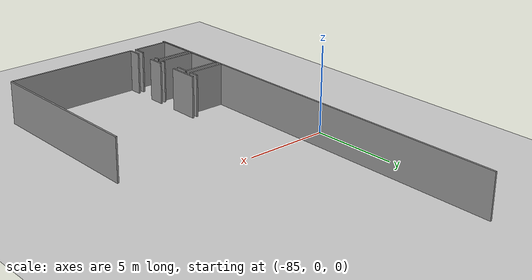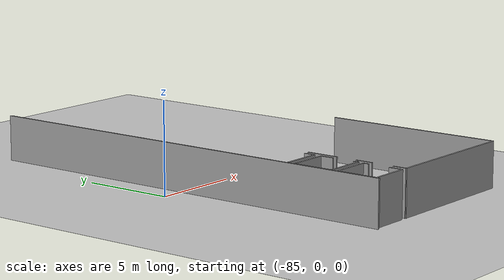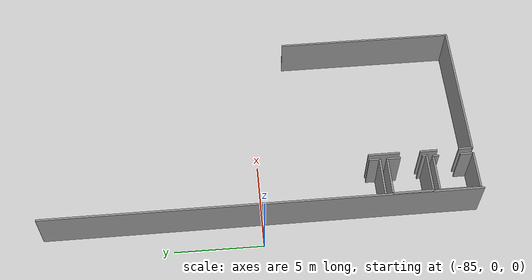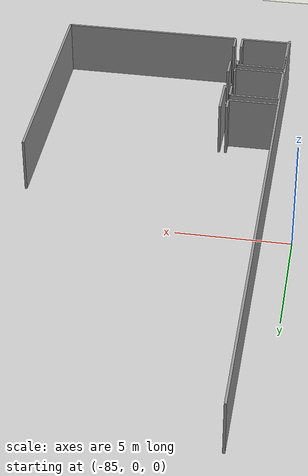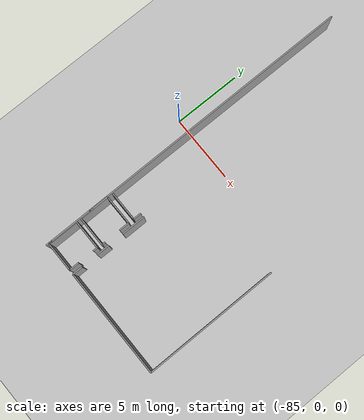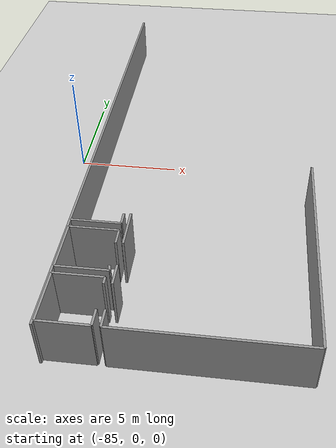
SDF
<sdf version="1.6">
 <world name="default">
  <model name="ground_plane">
   <static>1</static>
   <link name="link">
    <collision name="collision">
     <geometry><plane><normal>0 0 1</normal><size>100 100</size></plane></geometry>
     <surface><friction><ode><mu>100</mu><mu2>50</mu2></ode></friction></surface>
    </collision>
    <visual name="visual">
     <cast_shadows>0</cast_shadows>
     <geometry><plane><normal>0 0 1</normal><size>100 100</size></plane></geometry>
     <material>
      <script><uri>file://media/materials/scripts/gazebo.material</uri><name>Gazebo/Grey</name></script>
     </material>
    </visual>
   </link>
  </model>
  <model name="0510045907_A_40_1_105">
   <static>1</static>
   <link name="Wall_0">
    <collision name="Wall_0_Collision">
     <geometry><box><size>9.99086016045 0.1 2.5</size></box></geometry>
     <pose>4.99543008023 0 1.25 0 0 0</pose>
    </collision>
    <visual name="Wall_0_Visual">
     <pose>4.99543008023 0 1.25 0 0 0</pose>
     <geometry><box><size>9.99086016045 0.1 2.5</size></box></geometry>
     <material>
      <script><uri>file://media/materials/scripts/gazebo.material</uri><name>Gazebo/Grey</name></script>
      <ambient>1 1 1 1</ambient>
     </material>
    </visual>
    <pose>10.6052604854 -24.2655123388 0 0 0 1.57079632679</pose>
   </link>
   <link name="Wall_8">
    <collision name="Wall_8_Collision">
     <geometry><box><size>1.76728952981 0.1 2.5</size></box></geometry>
     <pose>0.883644764903 0 1.25 0 0 0</pose>
    </collision>
    <visual name="Wall_8_Visual">
     <pose>0.883644764903 0 1.25 0 0 0</pose>
     <geometry><box><size>1.76728952981 0.1 2.5</size></box></geometry>
     <material>
      <script><uri>file://media/materials/scripts/gazebo.material</uri><name>Gazebo/Grey</name></script>
      <ambient>1 1 1 1</ambient>
     </material>
    </visual>
    <pose>2.56651772113 -18.3621915304 0 0 0 -1.57079632679</pose>
   </link>
   <link name="Wall_9">
    <collision name="Wall_9_Collision">
     <geometry><box><size>0.966030263024 0.1 2.5</size></box></geometry>
     <pose>0.483015131512 0 1.25 0 0 0</pose>
    </collision>
    <visual name="Wall_9_Visual">
     <pose>0.483015131512 0 1.25 0 0 0</pose>
     <geometry><box><size>0.966030263024 0.1 2.5</size></box></geometry>
     <material>
      <script><uri>file://media/materials/scripts/gazebo.material</uri><name>Gazebo/Grey</name></script>
      <ambient>1 1 1 1</ambient>
     </material>
    </visual>
    <pose>2.56651772113 -21.2927795268 0 0 0 -1.57079632679</pose>
   </link>
   <link name="Wall_10">
    <collision name="Wall_10_Collision">
     <geometry><box><size>0.763684370874 0.1 2.5</size></box></geometry>
     <pose>0.381842185437 0 1.25 0 0 0</pose>
    </collision>
    <visual name="Wall_10_Visual">
     <pose>0.381842185437 0 1.25 0 0 0</pose>
     <geometry><box><size>0.763684370874 0.1 2.5</size></box></geometry>
     <material>
      <script><uri>file://media/materials/scripts/gazebo.material</uri><name>Gazebo/Grey</name></script>
      <ambient>1 1 1 1</ambient>
     </material>
    </visual>
    <pose>2.56651772113 -23.4822788667 0 0 0 -1.57079632679</pose>
   </link>
   <link name="Wall_11">
    <collision name="Wall_11_Collision">
     <geometry><box><size>8.0387665346 0.1 2.5</size></box></geometry>
     <pose>4.0193832673 0 1.25 0 0 0</pose>
    </collision>
    <visual name="Wall_11_Visual">
     <pose>4.0193832673 0 1.25 0 0 0</pose>
     <geometry><box><size>8.0387665346 0.1 2.5</size></box></geometry>
     <material>
      <script><uri>file://media/materials/scripts/gazebo.material</uri><name>Gazebo/Grey</name></script>
      <ambient>1 1 1 1</ambient>
     </material>
    </visual>
    <pose>2.56651772113 -24.2459632375 0 0 0 -0.00243185573727</pose>
   </link>
   <link name="Wall_17">
    <collision name="Wall_17_Collision">
     <geometry><box><size>2.24687722149 0.1 2.5</size></box></geometry>
     <pose>1.12343861074 0 1.25 0 0 0</pose>
    </collision>
    <visual name="Wall_17_Visual">
     <pose>1.12343861074 0 1.25 0 0 0</pose>
     <geometry><box><size>2.24687722149 0.1 2.5</size></box></geometry>
     <material>
      <script><uri>file://media/materials/scripts/gazebo.material</uri><name>Gazebo/Grey</name></script>
      <ambient>1 1 1 1</ambient>
     </material>
    </visual>
    <pose>0.013201990454 -18.9702447446 0 0 0 0.0</pose>
   </link>
   <link name="Wall_18">
    <collision name="Wall_18_Collision">
     <geometry><box><size>0.593327917132 0.1 2.5</size></box></geometry>
     <pose>0.296663958566 0 1.25 0 0 0</pose>
    </collision>
    <visual name="Wall_18_Visual">
     <pose>0.296663958566 0 1.25 0 0 0</pose>
     <geometry><box><size>0.593327917132 0.1 2.5</size></box></geometry>
     <material>
      <script><uri>file://media/materials/scripts/gazebo.material</uri><name>Gazebo/Grey</name></script>
      <ambient>1 1 1 1</ambient>
     </material>
    </visual>
    <pose>2.26007921194 -18.9702447446 0 0 0 1.57079632679</pose>
   </link>
   <link name="Wall_22">
    <collision name="Wall_22_Collision">
     <geometry><box><size>2.25931755865 0.1 2.5</size></box></geometry>
     <pose>1.12965877932 0 1.25 0 0 0</pose>
    </collision>
    <visual name="Wall_22_Visual">
     <pose>1.12965877932 0 1.25 0 0 0</pose>
     <geometry><box><size>2.25931755865 0.1 2.5</size></box></geometry>
     <material>
      <script><uri>file://media/materials/scripts/gazebo.material</uri><name>Gazebo/Grey</name></script>
      <ambient>1 1 1 1</ambient>
     </material>
    </visual>
    <pose>2.31034832944 -21.6083578755 0 0 0 3.14159265359</pose>
   </link>
   <link name="Wall_23">
    <collision name="Wall_23_Collision">
     <geometry><box><size>2.22148877831 0.1 2.5</size></box></geometry>
     <pose>1.11074438915 0 1.25 0 0 0</pose>
    </collision>
    <visual name="Wall_23_Visual">
     <pose>1.11074438915 0 1.25 0 0 0</pose>
     <geometry><box><size>2.22148877831 0.1 2.5</size></box></geometry>
     <material>
      <script><uri>file://media/materials/scripts/gazebo.material</uri><name>Gazebo/Grey</name></script>
      <ambient>1 1 1 1</ambient>
     </material>
    </visual>
    <pose>0.0510307707931 -21.6083578755 0 0 0 1.57079632679</pose>
   </link>
   <link name="Wall_24">
    <collision name="Wall_24_Collision">
     <geometry><box><size>2.20092413933 0.1 2.5</size></box></geometry>
     <pose>1.10046206967 0 1.25 0 0 0</pose>
    </collision>
    <visual name="Wall_24_Visual">
     <pose>1.10046206967 0 1.25 0 0 0</pose>
     <geometry><box><size>2.20092413933 0.1 2.5</size></box></geometry>
     <material>
      <script><uri>file://media/materials/scripts/gazebo.material</uri><name>Gazebo/Grey</name></script>
      <ambient>1 1 1 1</ambient>
     </material>
    </visual>
    <pose>0.0510307707931 -19.3868690972 0 0 0 0.0</pose>
   </link>
   <link name="Wall_25">
    <collision name="Wall_25_Collision">
     <geometry><box><size>0.742104194171 0.1 2.5</size></box></geometry>
     <pose>0.371052097085 0 1.25 0 0 0</pose>
    </collision>
    <visual name="Wall_25_Visual">
     <pose>0.371052097085 0 1.25 0 0 0</pose>
     <geometry><box><size>0.742104194171 0.1 2.5</size></box></geometry>
     <material>
      <script><uri>file://media/materials/scripts/gazebo.material</uri><name>Gazebo/Grey</name></script>
      <ambient>1 1 1 1</ambient>
     </material>
    </visual>
    <pose>2.25195491012 -19.3868690972 0 0 0 -1.57079632679</pose>
   </link>
   <link name="Wall_26">
    <collision name="Wall_26_Collision">
     <geometry><box><size>0.259028818743 0.1 2.5</size></box></geometry>
     <pose>0.129514409372 0 1.25 0 0 0</pose>
    </collision>
    <visual name="Wall_26_Visual">
     <pose>0.129514409372 0 1.25 0 0 0</pose>
     <geometry><box><size>0.259028818743 0.1 2.5</size></box></geometry>
     <material>
      <script><uri>file://media/materials/scripts/gazebo.material</uri><name>Gazebo/Grey</name></script>
      <ambient>1 1 1 1</ambient>
     </material>
    </visual>
    <pose>2.25195491012 -21.3559967503 0 0 0 -1.34340976209</pose>
   </link>
   <link name="Wall_27">
    <collision name="Wall_27_Collision">
     <geometry><box><size>0.731948816899 0.1 2.5</size></box></geometry>
     <pose>0.365974408449 0 1.25 0 0 0</pose>
    </collision>
    <visual name="Wall_27_Visual">
     <pose>0.365974408449 0 1.25 0 0 0</pose>
     <geometry><box><size>0.731948816899 0.1 2.5</size></box></geometry>
     <material>
      <script><uri>file://media/materials/scripts/gazebo.material</uri><name>Gazebo/Grey</name></script>
      <ambient>1 1 1 1</ambient>
     </material>
    </visual>
    <pose>2.22199654717 -24.2337767848 0 0 0 1.57079632679</pose>
   </link>
   <link name="Wall_28">
    <collision name="Wall_28_Collision">
     <geometry><box><size>0.328272570326 0.1 2.5</size></box></geometry>
     <pose>0.164136285163 0 1.25 0 0 0</pose>
    </collision>
    <visual name="Wall_28_Visual">
     <pose>0.164136285163 0 1.25 0 0 0</pose>
     <geometry><box><size>0.328272570326 0.1 2.5</size></box></geometry>
     <material>
      <script><uri>file://media/materials/scripts/gazebo.material</uri><name>Gazebo/Grey</name></script>
      <ambient>1 1 1 1</ambient>
     </material>
    </visual>
    <pose>2.22199654717 -22.2900375749 0 0 0 1.57079632679</pose>
   </link>
   <link name="Wall_29">
    <collision name="Wall_29_Collision">
     <geometry><box><size>2.17096577638 0.1 2.5</size></box></geometry>
     <pose>1.08548288819 0 1.25 0 0 0</pose>
    </collision>
    <visual name="Wall_29_Visual">
     <pose>1.08548288819 0 1.25 0 0 0</pose>
     <geometry><box><size>2.17096577638 0.1 2.5</size></box></geometry>
     <material>
      <script><uri>file://media/materials/scripts/gazebo.material</uri><name>Gazebo/Grey</name></script>
      <ambient>1 1 1 1</ambient>
     </material>
    </visual>
    <pose>2.22199654717 -21.9617650046 0 0 0 3.14159265359</pose>
   </link>
   <link name="Wall_30">
    <collision name="Wall_30_Collision">
     <geometry><box><size>2.27201178024 0.1 2.5</size></box></geometry>
     <pose>1.13600589012 0 1.25 0 0 0</pose>
    </collision>
    <visual name="Wall_30_Visual">
     <pose>1.13600589012 0 1.25 0 0 0</pose>
     <geometry><box><size>2.27201178024 0.1 2.5</size></box></geometry>
     <material>
      <script><uri>file://media/materials/scripts/gazebo.material</uri><name>Gazebo/Grey</name></script>
      <ambient>1 1 1 1</ambient>
     </material>
    </visual>
    <pose>0.0510307707931 -21.9617650046 0 0 0 -1.57079632679</pose>
   </link>
   <link name="Wall_31">
    <collision name="Wall_31_Collision">
     <geometry><box><size>2.17096577638 0.1 2.5</size></box></geometry>
     <pose>1.08548288819 0 1.25 0 0 0</pose>
    </collision>
    <visual name="Wall_31_Visual">
     <pose>1.08548288819 0 1.25 0 0 0</pose>
     <geometry><box><size>2.17096577638 0.1 2.5</size></box></geometry>
     <material>
      <script><uri>file://media/materials/scripts/gazebo.material</uri><name>Gazebo/Grey</name></script>
      <ambient>1 1 1 1</ambient>
     </material>
    </visual>
    <pose>0.0510307707931 -24.2337767848 0 0 0 0.0</pose>
   </link>
   <link name="Wall_216">
    <collision name="Wall_216_Collision">
     <geometry><box><size>24.4252056464 0.1 2.5</size></box></geometry>
     <pose>12.2126028232 0 1.25 0 0 0</pose>
    </collision>
    <visual name="Wall_216_Visual">
     <pose>12.2126028232 0 1.25 0 0 0</pose>
     <geometry><box><size>24.4252056464 0.1 2.5</size></box></geometry>
     <material>
      <script><uri>file://media/materials/scripts/gazebo.material</uri><name>Gazebo/Grey</name></script>
      <ambient>1 1 1 1</ambient>
     </material>
    </visual>
    <pose>0.0 -24.4252056464 0 0 0 1.57079632679</pose>
   </link>
   <pose>-83.65 12.2252056464 0 0 0 0</pose>
  </model>
 </world>
</sdf>
